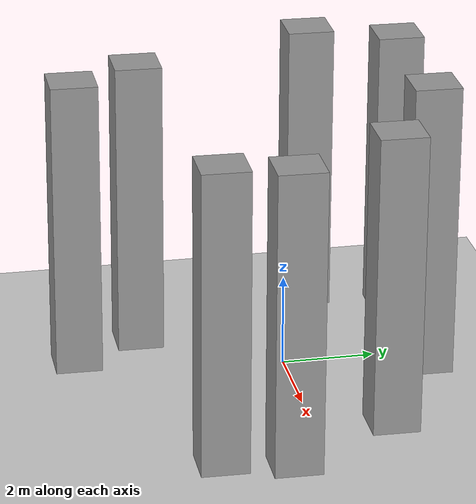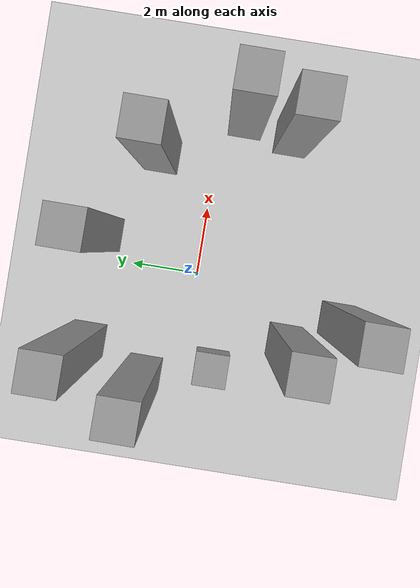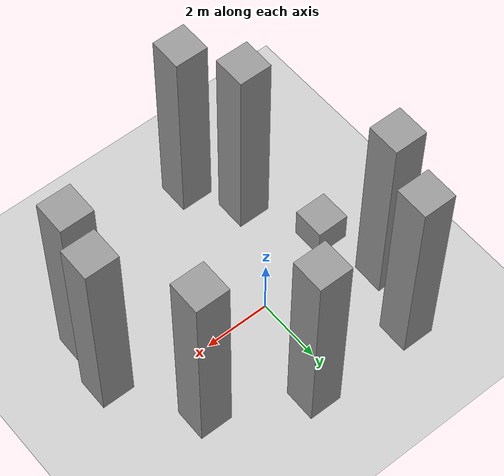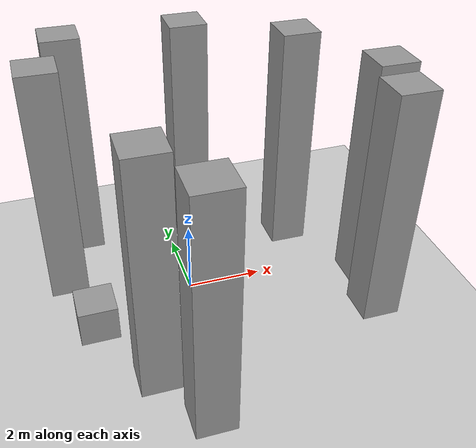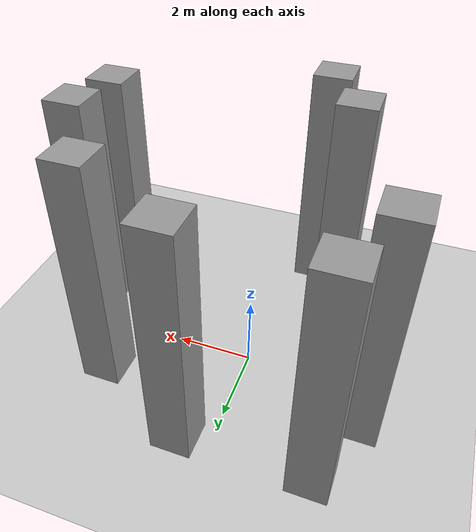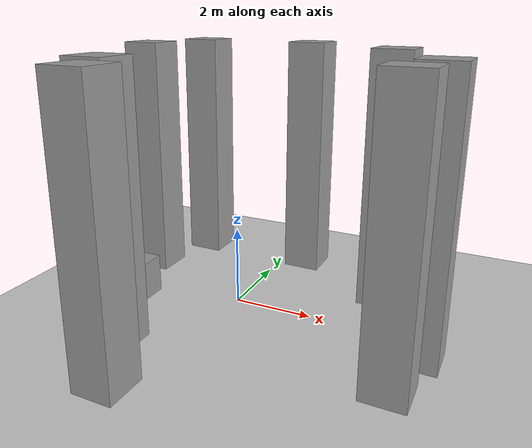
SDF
<?xml version="1.0" ?>
<sdf version="1.5">
  <world name="default">
    <!-- A global light source -->
    <include>
      <uri>model://sun</uri>
    </include>
    <!-- A ground plane -->
    <include>
      <uri>model://ground_plane</uri>
    </include>
    <include>
      <uri>model://asphalt_plane</uri>
    </include>

<model name='unit_box_0'>
      <pose frame=''>-2.72126 -0.842569 0.5 0 -0 0</pose>
      <link name='link'>
        <inertial>
          <mass>1</mass>
          <inertia>
            <ixx>0.166667</ixx>
            <ixy>0</ixy>
            <ixz>0</ixz>
            <iyy>0.166667</iyy>
            <iyz>0</iyz>
            <izz>0.166667</izz>
          </inertia>
        </inertial>
        <collision name='collision'>
          <geometry>
            <box>
              <size>1 1 0.999999</size>
            </box>
          </geometry>
          <max_contacts>10</max_contacts>
          <surface>
            <contact>
              <ode/>
            </contact>
            <bounce/>
            <friction>
              <torsional>
                <ode/>
              </torsional>
              <ode/>
            </friction>
          </surface>
        </collision>
        <visual name='visual'>
          <geometry>
            <box>
              <size>1 1 0.999999</size>
            </box>
          </geometry>
          <material>
            <script>
              <name>Gazebo/Grey</name>
              <uri>file://media/materials/scripts/gazebo.material</uri>
            </script>
          </material>
        </visual>
        <self_collide>0</self_collide>
        <kinematic>0</kinematic>
        <gravity>1</gravity>
      </link>
    </model>
    <model name='unit_box_0_clone'>
      <pose frame=''>-0.717871 -4.39063 3.30044 -0.005916 0.002533 -0.008565</pose>
      <link name='link'>
        <inertial>
          <mass>1</mass>
          <inertia>
            <ixx>0.166667</ixx>
            <ixy>0</ixy>
            <ixz>0</ixz>
            <iyy>0.166667</iyy>
            <iyz>0</iyz>
            <izz>0.166667</izz>
          </inertia>
        </inertial>
        <collision name='collision'>
          <geometry>
            <box>
              <size>1 1 6.49259</size>
            </box>
          </geometry>
          <max_contacts>10</max_contacts>
          <surface>
            <contact>
              <ode/>
            </contact>
            <bounce/>
            <friction>
              <torsional>
                <ode/>
              </torsional>
              <ode/>
            </friction>
          </surface>
        </collision>
        <visual name='visual'>
          <geometry>
            <box>
              <size>1 1 6.49259</size>
            </box>
          </geometry>
          <material>
            <script>
              <name>Gazebo/Grey</name>
              <uri>file://media/materials/scripts/gazebo.material</uri>
            </script>
          </material>
        </visual>
        <self_collide>0</self_collide>
        <kinematic>0</kinematic>
        <gravity>1</gravity>
      </link>
    </model>
    <model name='unit_box_0_clone_0'>
      <pose frame=''>-3.21521 1.15717 3.30044 -0.005916 0.002533 -0.008565</pose>
      <link name='link'>
        <inertial>
          <mass>1</mass>
          <inertia>
            <ixx>0.166667</ixx>
            <ixy>0</ixy>
            <ixz>0</ixz>
            <iyy>0.166667</iyy>
            <iyz>0</iyz>
            <izz>0.166667</izz>
          </inertia>
        </inertial>
        <collision name='collision'>
          <geometry>
            <box>
              <size>1 1 6.49259</size>
            </box>
          </geometry>
          <max_contacts>10</max_contacts>
          <surface>
            <contact>
              <ode/>
            </contact>
            <bounce/>
            <friction>
              <torsional>
                <ode/>
              </torsional>
              <ode/>
            </friction>
          </surface>
        </collision>
        <visual name='visual'>
          <geometry>
            <box>
              <size>1 1 6.49259</size>
            </box>
          </geometry>
          <material>
            <script>
              <name>Gazebo/Grey</name>
              <uri>file://media/materials/scripts/gazebo.material</uri>
            </script>
          </material>
        </visual>
        <self_collide>0</self_collide>
        <kinematic>0</kinematic>
        <gravity>1</gravity>
      </link>
    </model>
    <model name='unit_box_0_clone_1'>
      <pose frame=''>-2.47547 2.99912 3.30044 -0.005916 0.002533 -0.008565</pose>
      <link name='link'>
        <inertial>
          <mass>1</mass>
          <inertia>
            <ixx>0.166667</ixx>
            <ixy>0</ixy>
            <ixz>0</ixz>
            <iyy>0.166667</iyy>
            <iyz>0</iyz>
            <izz>0.166667</izz>
          </inertia>
        </inertial>
        <collision name='collision'>
          <geometry>
            <box>
              <size>1 1 6.49259</size>
            </box>
          </geometry>
          <max_contacts>10</max_contacts>
          <surface>
            <contact>
              <ode/>
            </contact>
            <bounce/>
            <friction>
              <torsional>
                <ode/>
              </torsional>
              <ode/>
            </friction>
          </surface>
        </collision>
        <visual name='visual'>
          <geometry>
            <box>
              <size>1 1 6.49259</size>
            </box>
          </geometry>
          <material>
            <script>
              <name>Gazebo/Grey</name>
              <uri>file://media/materials/scripts/gazebo.material</uri>
            </script>
          </material>
        </visual>
        <self_collide>0</self_collide>
        <kinematic>0</kinematic>
        <gravity>1</gravity>
      </link>
    </model>
    <model name='unit_box_0_clone_2'>
      <pose frame=''>0.801788 2.9824 3.30044 -0.005916 0.002533 -0.008565</pose>
      <link name='link'>
        <inertial>
          <mass>1</mass>
          <inertia>
            <ixx>0.166667</ixx>
            <ixy>0</ixy>
            <ixz>0</ixz>
            <iyy>0.166667</iyy>
            <iyz>0</iyz>
            <izz>0.166667</izz>
          </inertia>
        </inertial>
        <collision name='collision'>
          <geometry>
            <box>
              <size>1 1 6.49259</size>
            </box>
          </geometry>
          <max_contacts>10</max_contacts>
          <surface>
            <contact>
              <ode/>
            </contact>
            <bounce/>
            <friction>
              <torsional>
                <ode/>
              </torsional>
              <ode/>
            </friction>
          </surface>
        </collision>
        <visual name='visual'>
          <geometry>
            <box>
              <size>1 1 6.49259</size>
            </box>
          </geometry>
          <material>
            <script>
              <name>Gazebo/Grey</name>
              <uri>file://media/materials/scripts/gazebo.material</uri>
            </script>
          </material>
        </visual>
        <self_collide>0</self_collide>
        <kinematic>0</kinematic>
        <gravity>1</gravity>
      </link>
    </model>
    <model name='unit_box_0_clone_3'>
      <pose frame=''>3.39855 1.61212 3.30044 -0.005916 0.002533 -0.008565</pose>
      <link name='link'>
        <inertial>
          <mass>1</mass>
          <inertia>
            <ixx>0.166667</ixx>
            <ixy>0</ixy>
            <ixz>0</ixz>
            <iyy>0.166667</iyy>
            <iyz>0</iyz>
            <izz>0.166667</izz>
          </inertia>
        </inertial>
        <collision name='collision'>
          <geometry>
            <box>
              <size>1 1 6.49259</size>
            </box>
          </geometry>
          <max_contacts>10</max_contacts>
          <surface>
            <contact>
              <ode/>
            </contact>
            <bounce/>
            <friction>
              <torsional>
                <ode/>
              </torsional>
              <ode/>
            </friction>
          </surface>
        </collision>
        <visual name='visual'>
          <geometry>
            <box>
              <size>1 1 6.49259</size>
            </box>
          </geometry>
          <material>
            <script>
              <name>Gazebo/Grey</name>
              <uri>file://media/materials/scripts/gazebo.material</uri>
            </script>
          </material>
        </visual>
        <self_collide>0</self_collide>
        <kinematic>0</kinematic>
        <gravity>1</gravity>
      </link>
    </model>
    <model name='unit_box_0_clone_4'>
      <pose frame=''>4.8377 -0.742459 3.30044 -0.005916 0.002533 -0.008565</pose>
      <link name='link'>
        <inertial>
          <mass>1</mass>
          <inertia>
            <ixx>0.166667</ixx>
            <ixy>0</ixy>
            <ixz>0</ixz>
            <iyy>0.166667</iyy>
            <iyz>0</iyz>
            <izz>0.166667</izz>
          </inertia>
        </inertial>
        <collision name='collision'>
          <geometry>
            <box>
              <size>1 1 6.49259</size>
            </box>
          </geometry>
          <max_contacts>10</max_contacts>
          <surface>
            <contact>
              <ode/>
            </contact>
            <bounce/>
            <friction>
              <torsional>
                <ode/>
              </torsional>
              <ode/>
            </friction>
          </surface>
        </collision>
        <visual name='visual'>
          <geometry>
            <box>
              <size>1 1 6.49259</size>
            </box>
          </geometry>
          <material>
            <script>
              <name>Gazebo/Grey</name>
              <uri>file://media/materials/scripts/gazebo.material</uri>
            </script>
          </material>
        </visual>
        <self_collide>0</self_collide>
        <kinematic>0</kinematic>
        <gravity>1</gravity>
      </link>
    </model>
    <model name='unit_box_0_clone_5'>
      <pose frame=''>4.5141 -2.17337 3.30044 -0.005916 0.002533 -0.008565</pose>
      <link name='link'>
        <inertial>
          <mass>1</mass>
          <inertia>
            <ixx>0.166667</ixx>
            <ixy>0</ixy>
            <ixz>0</ixz>
            <iyy>0.166667</iyy>
            <iyz>0</iyz>
            <izz>0.166667</izz>
          </inertia>
        </inertial>
        <collision name='collision'>
          <geometry>
            <box>
              <size>1 1 6.49259</size>
            </box>
          </geometry>
          <max_contacts>10</max_contacts>
          <surface>
            <contact>
              <ode/>
            </contact>
            <bounce/>
            <friction>
              <torsional>
                <ode/>
              </torsional>
              <ode/>
            </friction>
          </surface>
        </collision>
        <visual name='visual'>
          <geometry>
            <box>
              <size>1 1 6.49259</size>
            </box>
          </geometry>
          <material>
            <script>
              <name>Gazebo/Grey</name>
              <uri>file://media/materials/scripts/gazebo.material</uri>
            </script>
          </material>
        </visual>
        <self_collide>0</self_collide>
        <kinematic>0</kinematic>
        <gravity>1</gravity>
      </link>
    </model>
    <model name='unit_box_0_clone_6'>
      <pose frame=''>-1.61092 -2.90917 3.30044 -0.005916 0.002533 -0.008565</pose>
      <link name='link'>
        <inertial>
          <mass>1</mass>
          <inertia>
            <ixx>0.166667</ixx>
            <ixy>0</ixy>
            <ixz>0</ixz>
            <iyy>0.166667</iyy>
            <iyz>0</iyz>
            <izz>0.166667</izz>
          </inertia>
        </inertial>
        <collision name='collision'>
          <geometry>
            <box>
              <size>1 1 6.49259</size>
            </box>
          </geometry>
          <max_contacts>10</max_contacts>
          <surface>
            <contact>
              <ode/>
            </contact>
            <bounce/>
            <friction>
              <torsional>
                <ode/>
              </torsional>
              <ode/>
            </friction>
          </surface>
        </collision>
        <visual name='visual'>
          <geometry>
            <box>
              <size>1 1 6.49259</size>
            </box>
          </geometry>
          <material>
            <script>
              <name>Gazebo/Grey</name>
              <uri>file://media/materials/scripts/gazebo.material</uri>
            </script>
          </material>
        </visual>
        <self_collide>0</self_collide>
        <kinematic>0</kinematic>
        <gravity>1</gravity>
      </link>
    </model>

    <physics name='default_physics' default='0' type='ode'>
      <gravity>0 0 -9.8066</gravity>
      <ode>
        <solver>
          <type>quick</type>
          <iters>10</iters>
          <sor>1.3</sor>
          <use_dynamic_moi_rescaling>0</use_dynamic_moi_rescaling>
        </solver>
        <constraints>
          <cfm>0</cfm>
          <erp>0.2</erp>
          <contact_max_correcting_vel>100</contact_max_correcting_vel>
          <contact_surface_layer>0.001</contact_surface_layer>
        </constraints>
      </ode>
      <max_step_size>0.002</max_step_size>
      <real_time_factor>1</real_time_factor>
      <real_time_update_rate>500</real_time_update_rate>
      <magnetic_field>6e-06 2.3e-05 -4.2e-05</magnetic_field>
    </physics>
  </world>
</sdf>
